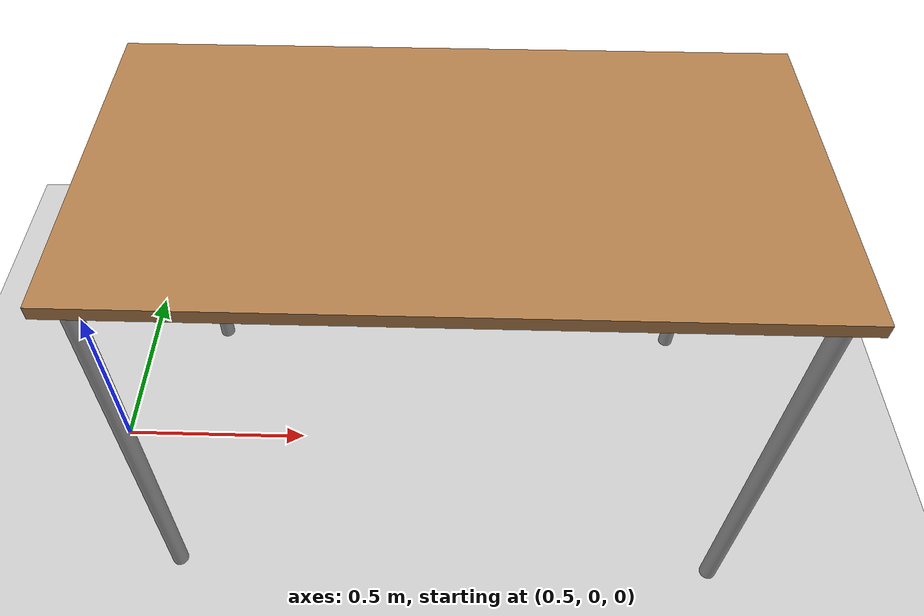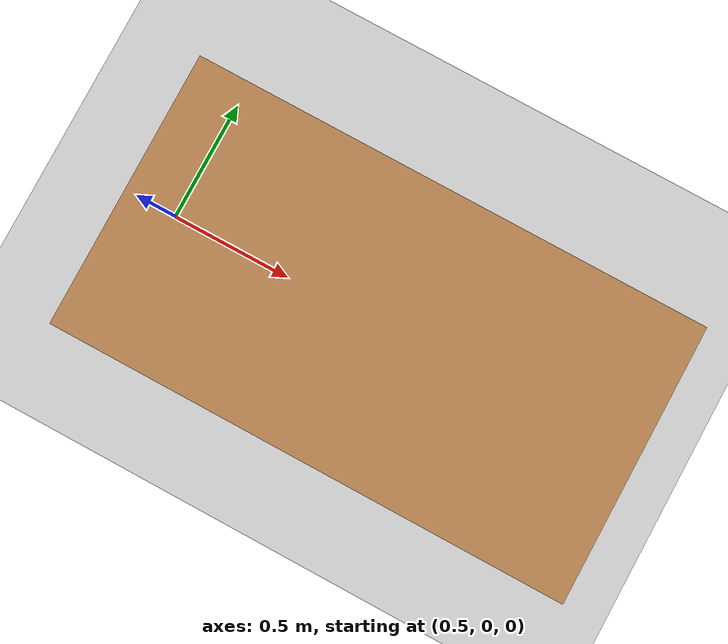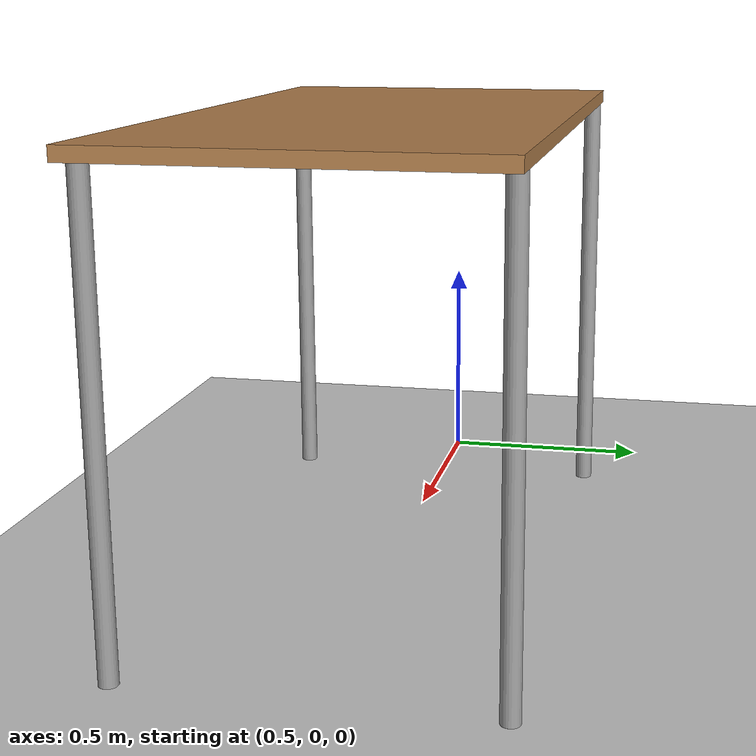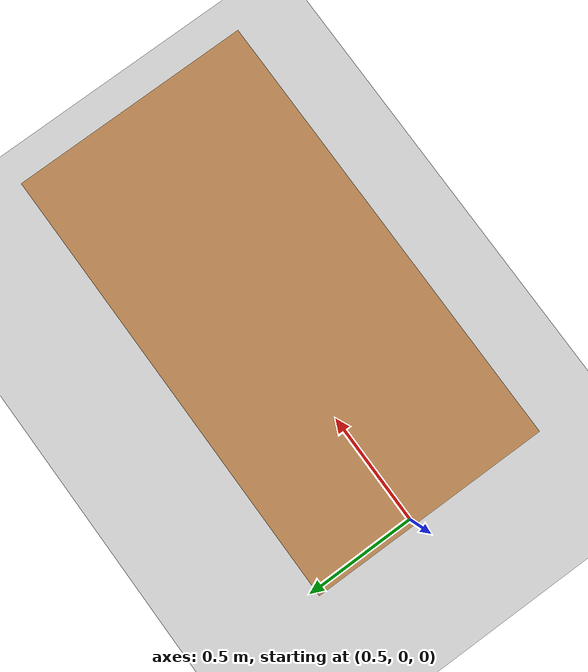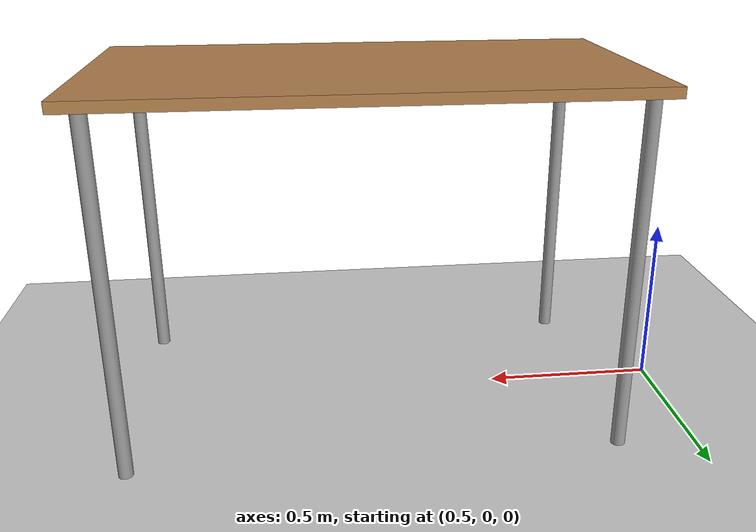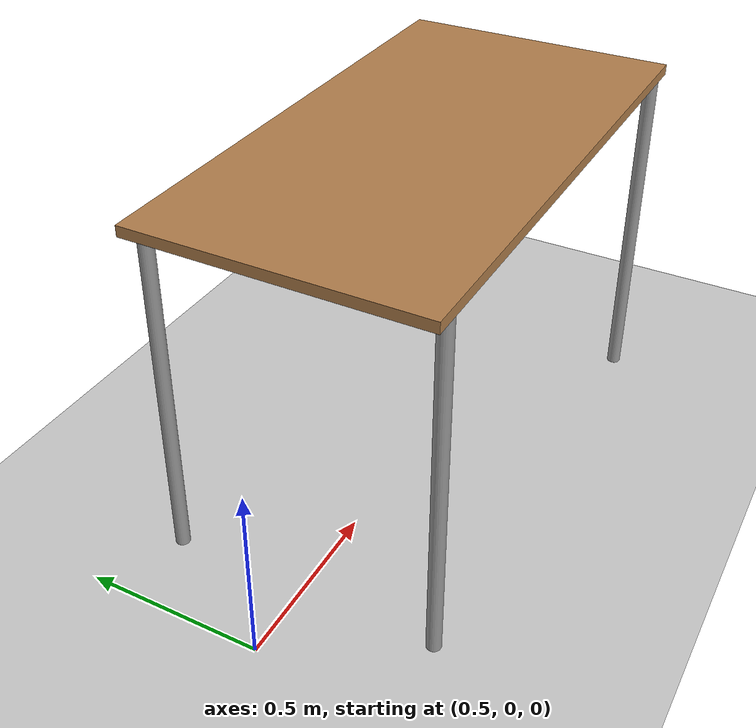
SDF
<sdf version="1.4">
 <world name="cordless_drill_setup">
  <include><uri>model://sun</uri></include>
  <include><uri>model://ground_plane</uri></include>
  <include><uri>model://low_table</uri><name>low_table</name><pose>1.4 0 0 0 0 0</pose></include>
  <scene><shadows>0</shadows></scene>
 </world>
</sdf>

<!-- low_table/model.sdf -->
<sdf version="1.5">
  <model name="low_table">
    <static>true</static>
    <link name="link">
      <collision name="surface">
        <pose>0 0 1.0 0 0 0</pose>
        <geometry>
          <box>
            <size>1.5 0.8 0.03</size>
          </box>
        </geometry>
        <surface>
          <friction>
            <ode>
              <mu>0.6</mu>
              <mu2>0.6</mu2>
            </ode>
          </friction>
        </surface>
      </collision>
      <visual name="visual1">
        <pose>0 0 1.0 0 0 0</pose>
        <geometry>
          <box>
            <size>1.5 0.8 0.03</size>
          </box>
        </geometry>
        <material>
          <script>
            <uri>file://media/materials/scripts/gazebo.material</uri>
            <name>Gazebo/Wood</name>
          </script>
        </material>
      </visual>
      <collision name="front_left_leg">
        <pose>0.68 0.38 0.5 0 0 0</pose>
        <geometry>
          <cylinder>
            <radius>0.02</radius>
            <length>1.0</length>
          </cylinder>
        </geometry>
      </collision>
      <visual name="front_left_leg">
        <pose>0.68 0.38 0.5 0 0 0</pose>
        <geometry>
          <cylinder>
            <radius>0.02</radius>
            <length>1.0</length>
          </cylinder>
        </geometry>
        <material>
          <script>
            <uri>file://media/materials/scripts/gazebo.material</uri>
            <name>Gazebo/Grey</name>
          </script>
        </material>
      </visual>
      <collision name="front_right_leg">
        <pose>0.68 -0.38 0.5 0 0 0</pose>
        <geometry>
          <cylinder>
            <radius>0.02</radius>
            <length>1.0</length>
          </cylinder>
        </geometry>
      </collision>
      <visual name="front_right_leg">
        <pose>0.68 -0.38 0.5 0 0 0</pose>
        <geometry>
          <cylinder>
            <radius>0.02</radius>
            <length>1.0</length>
          </cylinder>
        </geometry>
        <material>
          <script>
            <uri>file://media/materials/scripts/gazebo.material</uri>
            <name>Gazebo/Grey</name>
          </script>
        </material>
      </visual>
      <collision name="back_right_leg">
        <pose>-0.68 -0.38 0.5 0 0 0</pose>
        <geometry>
          <cylinder>
            <radius>0.02</radius>
            <length>1.0</length>
          </cylinder>
        </geometry>
      </collision>
      <visual name="back_right_leg">
        <pose>-0.68 -0.38 0.5 0 0 0</pose>
        <geometry>
          <cylinder>
            <radius>0.02</radius>
            <length>1.0</length>
          </cylinder>
        </geometry>
        <material>
          <script>
            <uri>file://media/materials/scripts/gazebo.material</uri>
            <name>Gazebo/Grey</name>
          </script>
        </material>
      </visual>
      <collision name="back_left_leg">
        <pose>-0.68 0.38 0.5 0 0 0</pose>
        <geometry>
          <cylinder>
            <radius>0.02</radius>
            <length>1.0</length>
          </cylinder>
        </geometry>
      </collision>
      <visual name="back_left_leg">
        <pose>-0.68 0.38 0.5 0 0 0</pose>
        <geometry>
          <cylinder>
            <radius>0.02</radius>
            <length>1.0</length>
          </cylinder>
        </geometry>
        <material>
          <script>
            <uri>file://media/materials/scripts/gazebo.material</uri>
            <name>Gazebo/Grey</name>
          </script>
        </material>
      </visual>
    </link>
  </model>
</sdf>
